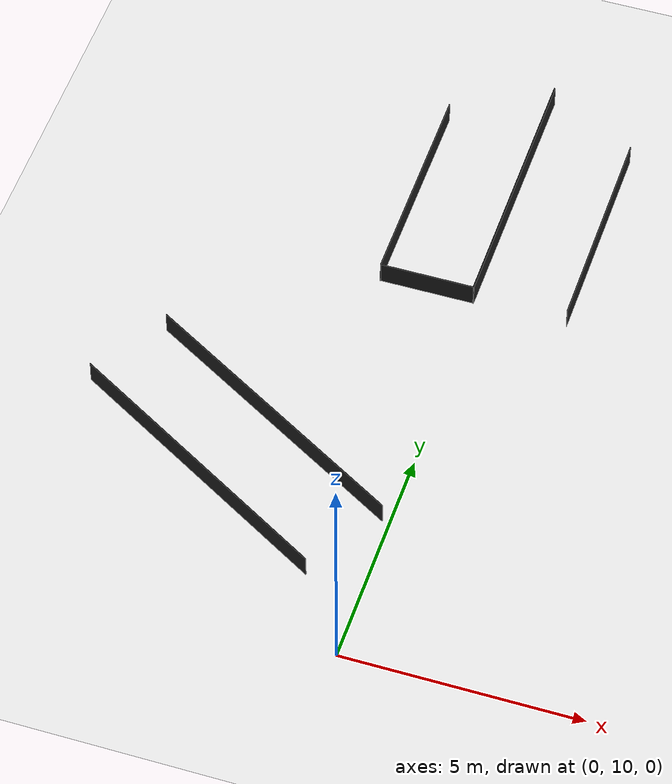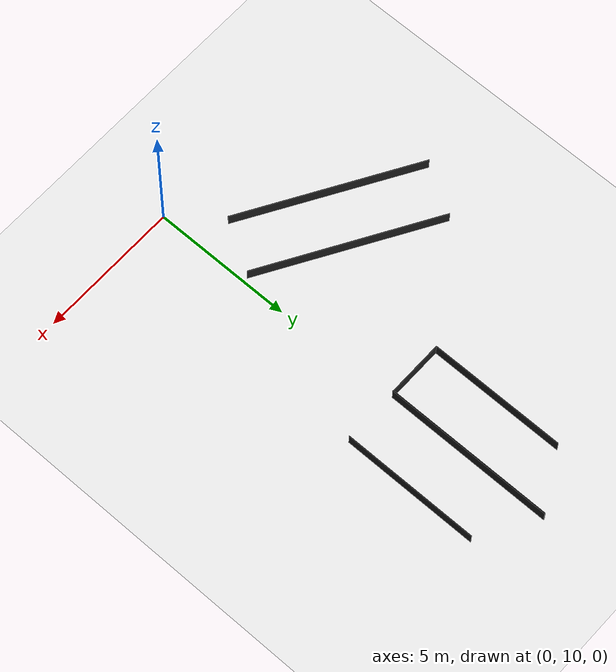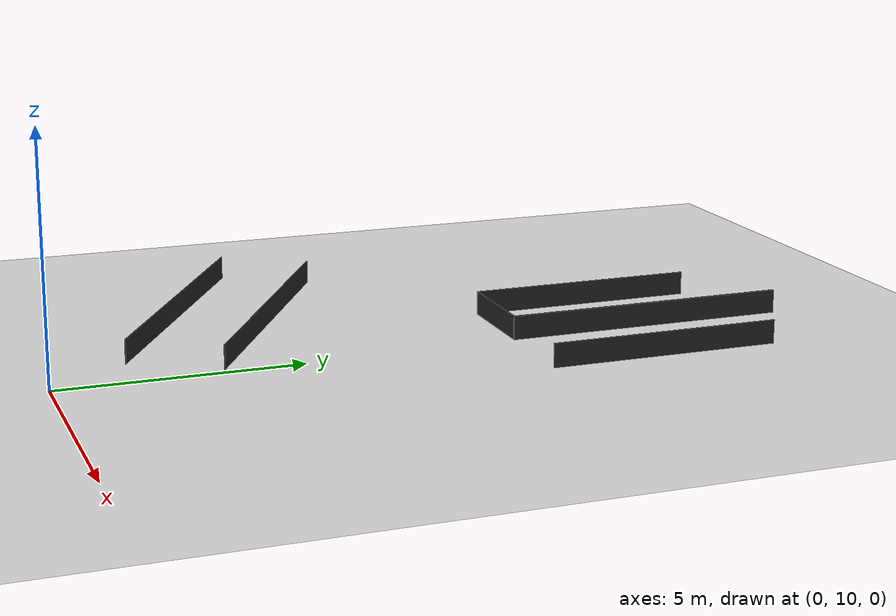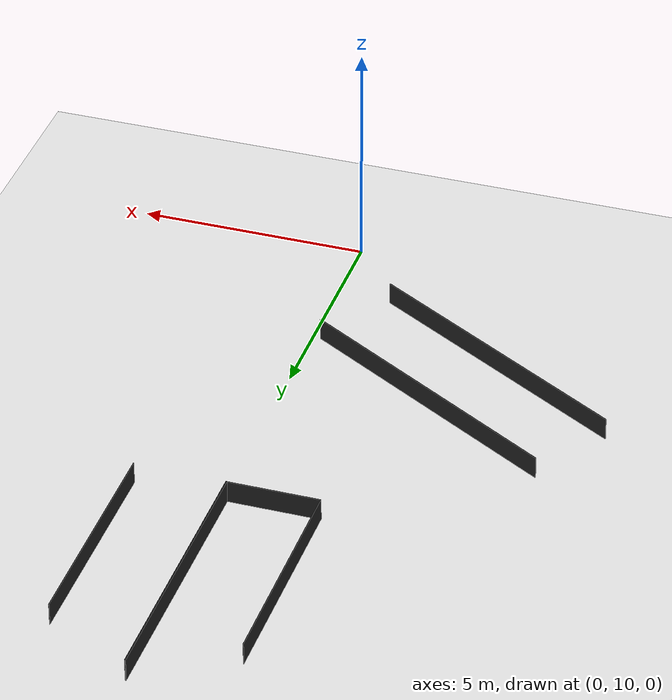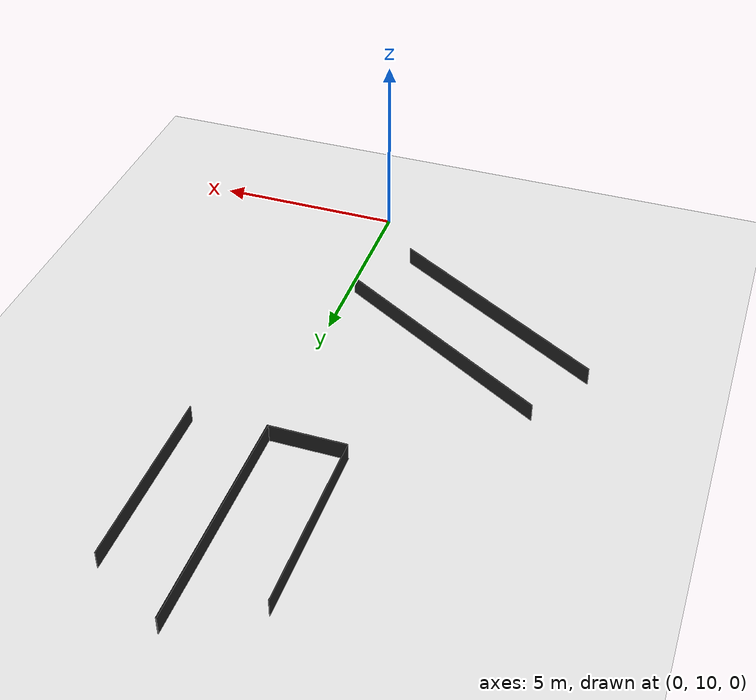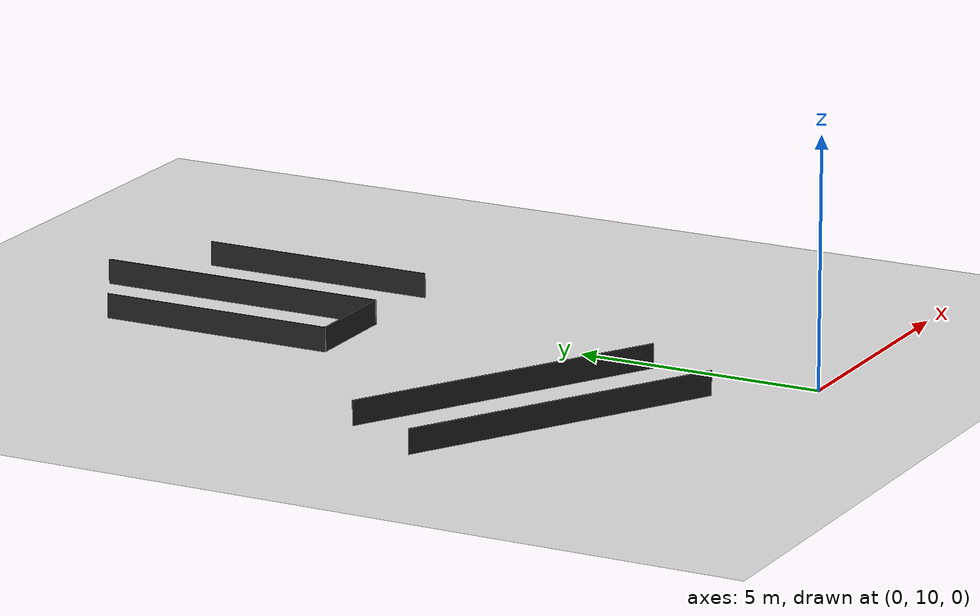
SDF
<sdf version="1.6">
 <world name="default">
  <model name="ground_plane">
   <static>1</static>
   <link name="link">
    <collision name="collision">
     <geometry><plane><normal>0 0 1</normal><size>100 100</size></plane></geometry>
     <surface><friction><ode><mu>100</mu><mu2>50</mu2></ode></friction></surface>
    </collision>
    <visual name="visual">
     <cast_shadows>0</cast_shadows>
     <geometry><plane><normal>0 0 1</normal><size>100 100</size></plane></geometry>
     <material>
      <script><uri>file://media/materials/scripts/gazebo.material</uri><name>Gazebo/White</name></script>
     </material>
    </visual>
   </link>
  </model>
  <model name="T_maze_right">
   <link name="link_clone_clone_1_clone_clone_0_clone">
    <inertial>
     <mass>1</mass>
     <inertia>
      <ixx>0.166667</ixx>
      <ixy>0</ixy>
      <ixz>0</ixz>
      <iyy>0.166667</iyy>
      <iyz>0</iyz>
      <izz>0.166667</izz>
     </inertia>
    </inertial>
    <pose>-0.706969 0.731883 3e-06 5e-06 -0 0</pose>
    <visual name="visual">
     <geometry><box><size>0.015 6 0.5</size></box></geometry>
     <material>
      <script><name>Gazebo/FlatBlack</name><uri>file://media/materials/scripts/gazebo.material</uri></script>
      <shader type="pixel"><normal_map>__default__</normal_map></shader>
      <ambient>0.1 0.1 0.1 1</ambient>
      <diffuse>0.1 0.1 0.1 1</diffuse>
      <specular>0.01 0.01 0.01 1</specular>
      <emissive>0 0 0 1</emissive>
     </material>
     <pose>0 0.58 0 0 -0 0</pose>
    </visual>
    <visual name="visual_2">
     <geometry><box><size>0.015 4.8453 0.5</size></box></geometry>
     <material>
      <script><name>Gazebo/FlatBlack</name><uri>file://media/materials/scripts/gazebo.material</uri></script>
      <shader type="pixel"><normal_map>__default__</normal_map></shader>
      <ambient>0.1 0.1 0.1 1</ambient>
      <diffuse>0.1 0.1 0.1 1</diffuse>
      <specular>0.01 0.01 0.01 1</specular>
      <emissive>0 0 0 1</emissive>
     </material>
     <pose>2 0 0 0 -0 0</pose>
    </visual>
    <collision name="collision">
     <pose>0 0.58 0 0 -0 0</pose>
     <geometry><box><size>0.015 6 0.5</size></box></geometry>
     <surface>
      <friction>
       <ode><mu>1</mu><mu2>1</mu2><fdir1>0 0 0</fdir1><slip1>0</slip1><slip2>0</slip2></ode>
       <torsional>
        <coefficient>1</coefficient>
        <patch_radius>0</patch_radius>
        <surface_radius>0</surface_radius>
        <use_patch_radius>1</use_patch_radius>
        <ode><slip>0</slip></ode>
       </torsional>
      </friction>
      <bounce><restitution_coefficient>0</restitution_coefficient><threshold>1e+06</threshold></bounce>
      <contact>
       <collide_without_contact>0</collide_without_contact>
       <collide_without_contact_bitmask>1</collide_without_contact_bitmask>
       <collide_bitmask>1</collide_bitmask>
       <ode>
        <soft_cfm>0</soft_cfm>
        <soft_erp>0.2</soft_erp>
        <kp>1e+13</kp>
        <kd>1</kd>
        <max_vel>0.01</max_vel>
        <min_depth>0</min_depth>
       </ode>
       <bullet>
        <split_impulse>1</split_impulse>
        <split_impulse_penetration_threshold>-0.01</split_impulse_penetration_threshold>
        <soft_cfm>0</soft_cfm>
        <soft_erp>0.2</soft_erp>
        <kp>1e+13</kp>
        <kd>1</kd>
       </bullet>
      </contact>
     </surface>
    </collision>
    <collision name="collision_1">
     <pose>2 0 0 0 -0 0</pose>
     <geometry><box><size>0.015 4.8453 0.5</size></box></geometry>
     <surface>
      <friction>
       <ode><mu>1</mu><mu2>1</mu2><fdir1>0 0 0</fdir1><slip1>0</slip1><slip2>0</slip2></ode>
       <torsional>
        <coefficient>1</coefficient>
        <patch_radius>0</patch_radius>
        <surface_radius>0</surface_radius>
        <use_patch_radius>1</use_patch_radius>
        <ode><slip>0</slip></ode>
       </torsional>
      </friction>
      <bounce><restitution_coefficient>0</restitution_coefficient><threshold>1e+06</threshold></bounce>
      <contact>
       <collide_without_contact>0</collide_without_contact>
       <collide_without_contact_bitmask>1</collide_without_contact_bitmask>
       <collide_bitmask>1</collide_bitmask>
       <ode>
        <soft_cfm>0</soft_cfm>
        <soft_erp>0.2</soft_erp>
        <kp>1e+13</kp>
        <kd>1</kd>
        <max_vel>0.01</max_vel>
        <min_depth>0</min_depth>
       </ode>
       <bullet>
        <split_impulse>1</split_impulse>
        <split_impulse_penetration_threshold>-0.01</split_impulse_penetration_threshold>
        <soft_cfm>0</soft_cfm>
        <soft_erp>0.2</soft_erp>
        <kp>1e+13</kp>
        <kd>1</kd>
       </bullet>
      </contact>
     </surface>
    </collision>
   </link>
   <link name="link_clone_clone_clone_clone_clone_clone_clone">
    <inertial>
     <mass>1</mass>
     <inertia>
      <ixx>0.166667</ixx>
      <ixy>0</ixy>
      <ixz>0</ixz>
      <iyy>0.166667</iyy>
      <iyz>0</iyz>
      <izz>0.166667</izz>
     </inertia>
    </inertial>
    <pose>0.292336 -1.68075 -1e-06 -0 -4e-06 1.5708</pose>
    <visual name="visual">
     <geometry><box><size>0.015 2 0.5</size></box></geometry>
     <material>
      <script><name>Gazebo/FlatBlack</name><uri>file://media/materials/scripts/gazebo.material</uri></script>
      <shader type="pixel"><normal_map>__default__</normal_map></shader>
      <ambient>0.1 0.1 0.1 1</ambient>
      <diffuse>0.1 0.1 0.1 1</diffuse>
      <specular>0.01 0.01 0.01 1</specular>
      <emissive>0 0 0 1</emissive>
     </material>
    </visual>
    <collision name="collision">
     <geometry><box><size>0.015 2 0.5</size></box></geometry>
     <surface>
      <friction>
       <ode><mu>1</mu><mu2>1</mu2><fdir1>0 0 0</fdir1><slip1>0</slip1><slip2>0</slip2></ode>
       <torsional>
        <coefficient>1</coefficient>
        <patch_radius>0</patch_radius>
        <surface_radius>0</surface_radius>
        <use_patch_radius>1</use_patch_radius>
        <ode><slip>0</slip></ode>
       </torsional>
      </friction>
      <bounce><restitution_coefficient>0</restitution_coefficient><threshold>1e+06</threshold></bounce>
      <contact>
       <collide_without_contact>0</collide_without_contact>
       <collide_without_contact_bitmask>1</collide_without_contact_bitmask>
       <collide_bitmask>1</collide_bitmask>
       <ode>
        <soft_cfm>0</soft_cfm>
        <soft_erp>0.2</soft_erp>
        <kp>1e+13</kp>
        <kd>1</kd>
        <max_vel>0.01</max_vel>
        <min_depth>0</min_depth>
       </ode>
       <bullet>
        <split_impulse>1</split_impulse>
        <split_impulse_penetration_threshold>-0.01</split_impulse_penetration_threshold>
        <soft_cfm>0</soft_cfm>
        <soft_erp>0.2</soft_erp>
        <kp>1e+13</kp>
        <kd>1</kd>
       </bullet>
      </contact>
     </surface>
    </collision>
   </link>
   <static>1</static>
   <pose>-0.84158 21.1125 0.25 3.14159 -0 3.14159</pose>
  </model>
  <model name="T_camber_mod">
   <link name="link_clone_clone_1_clone_clone_0_clone">
    <inertial>
     <mass>1</mass>
     <inertia>
      <ixx>0.166667</ixx>
      <ixy>0</ixy>
      <ixz>0</ixz>
      <iyy>0.166667</iyy>
      <iyz>0</iyz>
      <izz>0.166667</izz>
     </inertia>
    </inertial>
    <pose>-0.706969 0.731883 3e-06 5e-06 -0 0</pose>
    <visual name="visual">
     <geometry><box><size>0.015 6 0.5</size></box></geometry>
     <material>
      <script><name>Gazebo/FlatBlack</name><uri>file://media/materials/scripts/gazebo.material</uri></script>
      <shader type="pixel"><normal_map>__default__</normal_map></shader>
      <ambient>0.1 0.1 0.1 1</ambient>
      <diffuse>0.1 0.1 0.1 1</diffuse>
      <specular>0.01 0.01 0.01 1</specular>
      <emissive>0 0 0 1</emissive>
     </material>
     <pose>0 0.58 0 0 -0 0</pose>
    </visual>
    <visual name="visual_2">
     <geometry><box><size>0.015 4.8453 0.5</size></box></geometry>
     <material>
      <script><name>Gazebo/FlatBlack</name><uri>file://media/materials/scripts/gazebo.material</uri></script>
      <shader type="pixel"><normal_map>__default__</normal_map></shader>
      <ambient>0.1 0.1 0.1 1</ambient>
      <diffuse>0.1 0.1 0.1 1</diffuse>
      <specular>0.01 0.01 0.01 1</specular>
      <emissive>0 0 0 1</emissive>
     </material>
     <pose>2 0 0 0 -0 0</pose>
    </visual>
    <collision name="collision">
     <pose>0 0.58 0 0 -0 0</pose>
     <geometry><box><size>0.015 6 0.5</size></box></geometry>
     <surface>
      <friction>
       <ode><mu>1</mu><mu2>1</mu2><fdir1>0 0 0</fdir1><slip1>0</slip1><slip2>0</slip2></ode>
       <torsional>
        <coefficient>1</coefficient>
        <patch_radius>0</patch_radius>
        <surface_radius>0</surface_radius>
        <use_patch_radius>1</use_patch_radius>
        <ode><slip>0</slip></ode>
       </torsional>
      </friction>
      <bounce><restitution_coefficient>0</restitution_coefficient><threshold>1e+06</threshold></bounce>
      <contact>
       <collide_without_contact>0</collide_without_contact>
       <collide_without_contact_bitmask>1</collide_without_contact_bitmask>
       <collide_bitmask>1</collide_bitmask>
       <ode>
        <soft_cfm>0</soft_cfm>
        <soft_erp>0.2</soft_erp>
        <kp>1e+13</kp>
        <kd>1</kd>
        <max_vel>0.01</max_vel>
        <min_depth>0</min_depth>
       </ode>
       <bullet>
        <split_impulse>1</split_impulse>
        <split_impulse_penetration_threshold>-0.01</split_impulse_penetration_threshold>
        <soft_cfm>0</soft_cfm>
        <soft_erp>0.2</soft_erp>
        <kp>1e+13</kp>
        <kd>1</kd>
       </bullet>
      </contact>
     </surface>
    </collision>
    <collision name="collision_1">
     <pose>2 0 0 0 -0 0</pose>
     <geometry><box><size>0.015 4.8453 0.5</size></box></geometry>
     <surface>
      <friction>
       <ode><mu>1</mu><mu2>1</mu2><fdir1>0 0 0</fdir1><slip1>0</slip1><slip2>0</slip2></ode>
       <torsional>
        <coefficient>1</coefficient>
        <patch_radius>0</patch_radius>
        <surface_radius>0</surface_radius>
        <use_patch_radius>1</use_patch_radius>
        <ode><slip>0</slip></ode>
       </torsional>
      </friction>
      <bounce><restitution_coefficient>0</restitution_coefficient><threshold>1e+06</threshold></bounce>
      <contact>
       <collide_without_contact>0</collide_without_contact>
       <collide_without_contact_bitmask>1</collide_without_contact_bitmask>
       <collide_bitmask>1</collide_bitmask>
       <ode>
        <soft_cfm>0</soft_cfm>
        <soft_erp>0.2</soft_erp>
        <kp>1e+13</kp>
        <kd>1</kd>
        <max_vel>0.01</max_vel>
        <min_depth>0</min_depth>
       </ode>
       <bullet>
        <split_impulse>1</split_impulse>
        <split_impulse_penetration_threshold>-0.01</split_impulse_penetration_threshold>
        <soft_cfm>0</soft_cfm>
        <soft_erp>0.2</soft_erp>
        <kp>1e+13</kp>
        <kd>1</kd>
       </bullet>
      </contact>
     </surface>
    </collision>
   </link>
   <link name="link_clone_clone_clone_0_clone_clone_0">
    <inertial>
     <mass>1.37143</mass>
     <inertia>
      <ixx>5.07499</ixx>
      <ixy>0</ixy>
      <ixz>0</ixz>
      <iyy>0.0285972</iyy>
      <iyz>0</iyz>
      <izz>5.04644</izz>
     </inertia>
    </inertial>
    <pose>-4.62595 -7.74462 3e-06 2e-06 4e-06 1.03848</pose>
    <visual name="visual">
     <geometry><box><size>0.015 6.645 0.5</size></box></geometry>
     <material>
      <script><name>Gazebo/FlatBlack</name><uri>file://media/materials/scripts/gazebo.material</uri></script>
      <shader type="pixel"><normal_map>__default__</normal_map></shader>
      <ambient>0.1 0.1 0.1 1</ambient>
      <diffuse>0.1 0.1 0.1 1</diffuse>
      <specular>0.01 0.01 0.01 1</specular>
      <emissive>0 0 0 1</emissive>
     </material>
    </visual>
    <visual name="visual_2">
     <geometry><box><size>0.015 6.645 0.5</size></box></geometry>
     <material>
      <script><name>Gazebo/FlatBlack</name><uri>file://media/materials/scripts/gazebo.material</uri></script>
      <shader type="pixel"><normal_map>__default__</normal_map></shader>
      <ambient>0.1 0.1 0.1 1</ambient>
      <diffuse>0.1 0.1 0.1 1</diffuse>
      <specular>0.01 0.01 0.01 1</specular>
      <emissive>0 0 0 1</emissive>
     </material>
     <pose>2 0 0 0 -0 0</pose>
    </visual>
    <collision name="collision_1">
     <pose>2 0 0 0 -0 0</pose>
     <geometry><box><size>0.015 6.645 0.5</size></box></geometry>
     <surface>
      <friction>
       <ode><mu>1</mu><mu2>1</mu2><fdir1>0 0 0</fdir1><slip1>0</slip1><slip2>0</slip2></ode>
       <torsional>
        <coefficient>1</coefficient>
        <patch_radius>0</patch_radius>
        <surface_radius>0</surface_radius>
        <use_patch_radius>1</use_patch_radius>
        <ode><slip>0</slip></ode>
       </torsional>
      </friction>
      <bounce><restitution_coefficient>0</restitution_coefficient><threshold>1e+06</threshold></bounce>
      <contact>
       <collide_without_contact>0</collide_without_contact>
       <collide_without_contact_bitmask>1</collide_without_contact_bitmask>
       <collide_bitmask>1</collide_bitmask>
       <ode>
        <soft_cfm>0</soft_cfm>
        <soft_erp>0.2</soft_erp>
        <kp>1e+13</kp>
        <kd>1</kd>
        <max_vel>0.01</max_vel>
        <min_depth>0</min_depth>
       </ode>
       <bullet>
        <split_impulse>1</split_impulse>
        <split_impulse_penetration_threshold>-0.01</split_impulse_penetration_threshold>
        <soft_cfm>0</soft_cfm>
        <soft_erp>0.2</soft_erp>
        <kp>1e+13</kp>
        <kd>1</kd>
       </bullet>
      </contact>
     </surface>
    </collision>
    <collision name="collision">
     <geometry><box><size>0.015 6.645 0.5</size></box></geometry>
     <surface>
      <friction>
       <ode><mu>1</mu><mu2>1</mu2><fdir1>0 0 0</fdir1><slip1>0</slip1><slip2>0</slip2></ode>
       <torsional>
        <coefficient>1</coefficient>
        <patch_radius>0</patch_radius>
        <surface_radius>0</surface_radius>
        <use_patch_radius>1</use_patch_radius>
        <ode><slip>0</slip></ode>
       </torsional>
      </friction>
      <bounce><restitution_coefficient>0</restitution_coefficient><threshold>1e+06</threshold></bounce>
      <contact>
       <collide_without_contact>0</collide_without_contact>
       <collide_without_contact_bitmask>1</collide_without_contact_bitmask>
       <collide_bitmask>1</collide_bitmask>
       <ode>
        <soft_cfm>0</soft_cfm>
        <soft_erp>0.2</soft_erp>
        <kp>1e+13</kp>
        <kd>1</kd>
        <max_vel>0.01</max_vel>
        <min_depth>0</min_depth>
       </ode>
       <bullet>
        <split_impulse>1</split_impulse>
        <split_impulse_penetration_threshold>-0.01</split_impulse_penetration_threshold>
        <soft_cfm>0</soft_cfm>
        <soft_erp>0.2</soft_erp>
        <kp>1e+13</kp>
        <kd>1</kd>
       </bullet>
      </contact>
     </surface>
    </collision>
   </link>
   <static>1</static>
   <pose>0.58953 21.1021 0.25 0 -0 0</pose>
  </model>
 </world>
</sdf>
